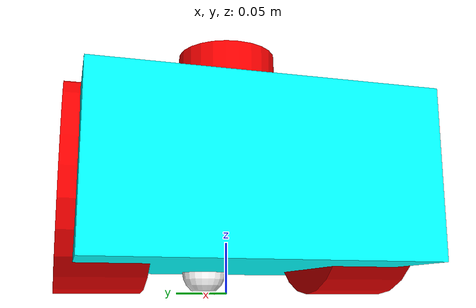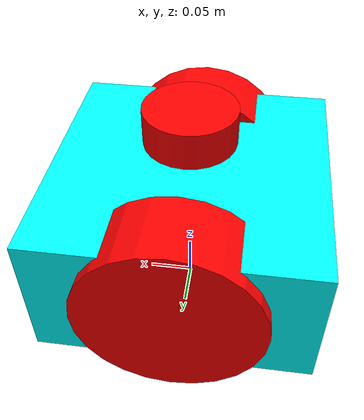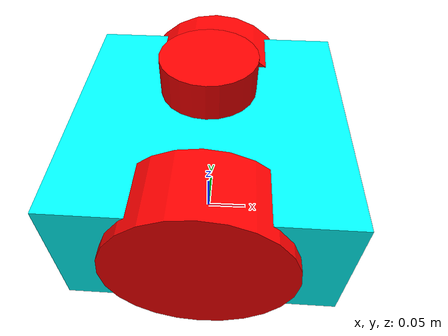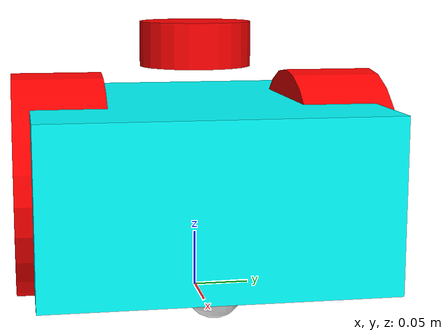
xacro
<?xml version="1.0"?>
<robot xmlns:xacro="http://www.ros.org/xacro" name="simple_robot">
  <!-- Define robot parameters -->
  <xacro:property name="base_width" value="0.3"/>
  <xacro:property name="base_length" value="0.3"/>
  <xacro:property name="base_height" value="0.15"/>
  <xacro:property name="wheel_radius" value="0.1"/>
  <xacro:property name="wheel_width" value="0.08"/>
  <xacro:property name="wheel_separation" value="0.25"/>

  <!-- Base footprint -->
  <link name="base_footprint"/>

  <!-- Base link -->
  <joint name="base_joint" type="fixed">
    <parent link="base_footprint"/>
    <child link="base_link"/>
    <origin xyz="0.0 0.0 ${wheel_radius}" rpy="0 0 0"/>
  </joint>

  <link name="base_link">
    <visual>
      <origin xyz="0 0 0" rpy="0 0 0"/>
      <geometry>
        <box size="${base_length} ${base_width} ${base_height}"/>
      </geometry>
      <material name="Cyan">
        <color rgba="0.0 1.0 1.0 1.0"/>
      </material>
    </visual>

    <collision>
      <origin xyz="0 0 0" rpy="0 0 0"/>
      <geometry>
        <box size="${base_length} ${base_width} ${base_height}"/>
      </geometry>
    </collision>

    <inertial>
      <origin xyz="0 0 0" rpy="0 0 0"/>
      <mass value="1.0"/>
      <inertia ixx="0.083" ixy="0.0" ixz="0.0"
               iyy="0.083" iyz="0.0"
               izz="0.083"/>
    </inertial>
  </link>

  <!-- Left wheel -->
  <joint name="left_wheel_joint" type="continuous">
    <parent link="base_link"/>
    <child link="left_wheel"/>
    <origin xyz="0.0 ${wheel_separation/2} 0.0" rpy="0 0 0"/>
    <axis xyz="0 1 0"/>
  </joint>

  <link name="left_wheel">
    <visual>
      <origin xyz="0 0 0" rpy="1.5707 0 0"/>
      <geometry>
        <cylinder radius="${wheel_radius}" length="${wheel_width}"/>
      </geometry>
      <material name="BrightRed">
        <color rgba="1.0 0.0 0.0 1.0"/>
      </material>
    </visual>

    <collision>
      <origin xyz="0 0 0" rpy="1.5707 0 0"/>
      <geometry>
        <cylinder radius="${wheel_radius}" length="${wheel_width}"/>
      </geometry>
    </collision>

    <inertial>
      <origin xyz="0 0 0" rpy="1.5707 0 0"/>
      <mass value="0.1"/>
      <inertia ixx="0.00051" ixy="0.0" ixz="0.0"
               iyy="0.00051" iyz="0.0"
               izz="0.00025"/>
    </inertial>
  </link>

  <!-- Right wheel -->
  <joint name="right_wheel_joint" type="continuous">
    <parent link="base_link"/>
    <child link="right_wheel"/>
    <origin xyz="0.0 ${-wheel_separation/2} 0.0" rpy="0 0 0"/>
    <axis xyz="0 1 0"/>
  </joint>

  <link name="right_wheel">
    <visual>
      <origin xyz="0 0 0" rpy="1.5707 0 0"/>
      <geometry>
        <cylinder radius="${wheel_radius}" length="${wheel_width}"/>
      </geometry>
      <material name="BrightRed">
        <color rgba="1.0 0.0 0.0 1.0"/>
      </material>
    </visual>

    <collision>
      <origin xyz="0 0 0" rpy="1.5707 0 0"/>
      <geometry>
        <cylinder radius="${wheel_radius}" length="${wheel_width}"/>
      </geometry>
    </collision>

    <inertial>
      <origin xyz="0 0 0" rpy="1.5707 0 0"/>
      <mass value="0.1"/>
      <inertia ixx="0.00051" ixy="0.0" ixz="0.0"
               iyy="0.00051" iyz="0.0"
               izz="0.00025"/>
    </inertial>
  </link>

  <!-- Caster wheel -->
  <joint name="caster_joint" type="fixed">
    <parent link="base_link"/>
    <child link="caster"/>
    <origin xyz="${base_length/2-0.05} 0.0 ${-base_height/2}" rpy="0 0 0"/>
  </joint>

  <link name="caster">
    <visual>
      <origin xyz="0 0 0" rpy="0 0 0"/>
      <geometry>
        <sphere radius="0.025"/>
      </geometry>
      <material name="White">
        <color rgba="1.0 1.0 1.0 1.0"/>
      </material>
    </visual>

    <collision>
      <origin xyz="0 0 0" rpy="0 0 0"/>
      <geometry>
        <sphere radius="0.025"/>
      </geometry>
    </collision>

    <inertial>
      <origin xyz="0 0 0" rpy="0 0 0"/>
      <mass value="0.05"/>
      <inertia ixx="0.0001" ixy="0.0" ixz="0.0"
               iyy="0.0001" iyz="0.0"
               izz="0.0001"/>
    </inertial>
  </link>

  <!-- LIDAR -->
  <joint name="lidar_joint" type="fixed">
    <parent link="base_link"/>
    <child link="lidar_link"/>
    <origin xyz="0.0 0.0 ${base_height/2 + 0.05}" rpy="0 0 0"/>
  </joint>

  <link name="lidar_link">
    <visual>
      <origin xyz="0 0 0" rpy="0 0 0"/>
      <geometry>
        <cylinder radius="0.05" length="0.04"/>
      </geometry>
      <material name="Red">
        <color rgba="1.0 0.0 0.0 1.0"/>
      </material>
    </visual>

    <collision>
      <origin xyz="0 0 0" rpy="0 0 0"/>
      <geometry>
        <cylinder radius="0.05" length="0.04"/>
      </geometry>
    </collision>

    <inertial>
      <origin xyz="0 0 0" rpy="0 0 0"/>
      <mass value="0.1"/>
      <inertia ixx="0.0001" ixy="0.0" ixz="0.0"
               iyy="0.0001" iyz="0.0"
               izz="0.0001"/>
    </inertial>
  </link>

  <!-- Gazebo plugins and materials -->

  <gazebo reference="base_link">
    <material>Gazebo/Blue</material>
  </gazebo>
  <gazebo reference="left_wheel">
    <material>Gazebo/DarkGrey</material>
  </gazebo>
  <gazebo reference="right_wheel">
    <material>Gazebo/DarkGrey</material>
  </gazebo>

  <!-- Differential drive plugin -->
  <gazebo>
    <plugin name="differential_drive_controller" filename="libgazebo_ros_diff_drive.so">
      <!-- wheels -->
      <left_joint>left_wheel_joint</left_joint>
      <right_joint>right_wheel_joint</right_joint>
      <!-- kinematics -->
      <wheel_separation>${wheel_separation}</wheel_separation>
      <wheel_diameter>${2*wheel_radius}</wheel_diameter>
      <!-- limits -->
      <max_wheel_torque>20</max_wheel_torque>
      <max_wheel_acceleration>1.0</max_wheel_acceleration>
      <!-- output -->
      <publish_odom>true</publish_odom>
      <publish_odom_tf>true</publish_odom_tf>
      <publish_wheel_tf>true</publish_wheel_tf>
      <odometry_frame>odom</odometry_frame>
      <robot_base_frame>base_footprint</robot_base_frame>
    </plugin>
  </gazebo>

  <!-- LIDAR plugin -->
  <gazebo reference="lidar_link">
    <sensor type="ray" name="head_hokuyo_sensor">
      <pose>0 0 0 0 0 0</pose>
      <visualize>false</visualize>
      <update_rate>40</update_rate>
      <ray>
        <scan>
          <horizontal>
            <samples>720</samples>
            <resolution>1</resolution>
            <min_angle>-1.570796</min_angle>
            <max_angle>1.570796</max_angle>
          </horizontal>
        </scan>
        <range>
          <min>0.10</min>
          <max>30.0</max>
          <resolution>0.01</resolution>
        </range>
        <noise>
          <type>gaussian</type>
          <mean>0.0</mean>
          <stddev>0.01</stddev>
        </noise>
      </ray>
      <plugin name="gazebo_ros_head_hokuyo_controller" filename="libgazebo_ros_ray_sensor.so">
        <ros>
          <namespace>/</namespace>
          <remapping>~/out:=scan</remapping>
        </ros>
        <output_type>sensor_msgs/LaserScan</output_type>
      </plugin>
    </sensor>
  </gazebo>
</robot>
